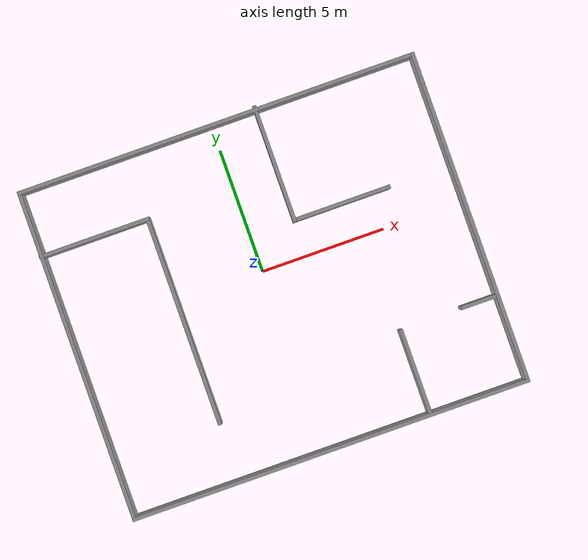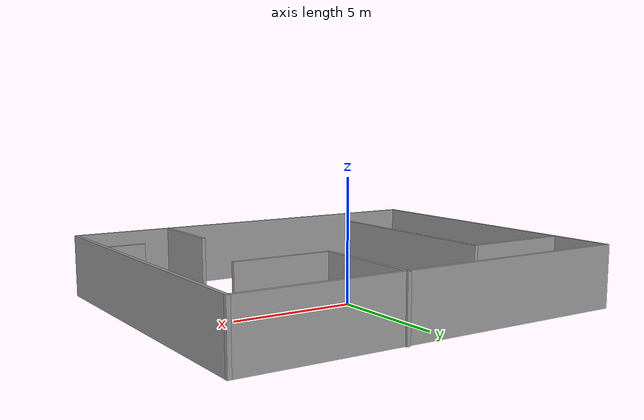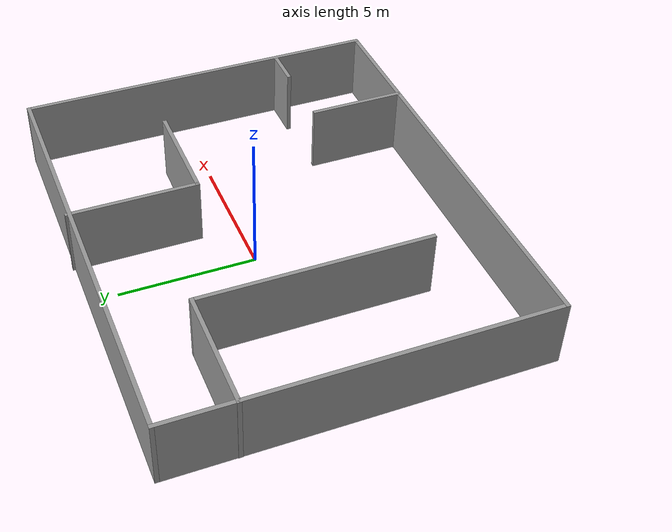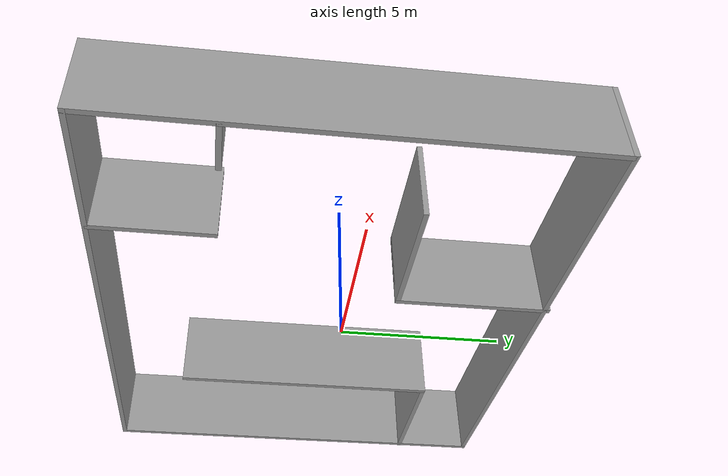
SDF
<?xml version='1.0'?>
<sdf version='1.7'>
  <model name='custom_map'>
    <pose>0.182569 -0.67134 0 0 -0 0</pose>
    <link name='Wall_31'>
      <collision name='Wall_31_Collision'>
        <geometry>
          <box>
            <size>16.25 0.15 2.5</size>
          </box>
        </geometry>
        <pose>0 0 1.25 0 -0 0</pose>
      </collision>
      <visual name='Wall_31_Visual'>
        <pose>0 0 1.25 0 -0 0</pose>
        <geometry>
          <box>
            <size>16.25 0.15 2.5</size>
          </box>
        </geometry>
        <material>
          <script>
            <uri>file://media/materials/scripts/gazebo.material</uri>
            <name>Gazebo/Grey</name>
          </script>
          <ambient>1 1 1 1</ambient>
        </material>
        <meta>
          <layer>0</layer>
        </meta>
      </visual>
      <pose>0.007645 -6.71784 0 0 -0 0</pose>
    </link>
    <link name='Wall_32'>
      <collision name='Wall_32_Collision'>
        <geometry>
          <box>
            <size>13.5 0.15 2.5</size>
          </box>
        </geometry>
        <pose>0 0 1.25 0 -0 0</pose>
      </collision>
      <visual name='Wall_32_Visual'>
        <pose>0 0 1.25 0 -0 0</pose>
        <geometry>
          <box>
            <size>13.5 0.15 2.5</size>
          </box>
        </geometry>
        <material>
          <script>
            <uri>file://media/materials/scripts/gazebo.material</uri>
            <name>Gazebo/Grey</name>
          </script>
          <ambient>1 1 1 1</ambient>
        </material>
        <meta>
          <layer>0</layer>
        </meta>
      </visual>
      <pose>8.05765 -0.042838 0 0 -0 1.5708</pose>
    </link>
    <link name='Wall_33'>
      <collision name='Wall_33_Collision'>
        <geometry>
          <box>
            <size>16.25 0.15 2.5</size>
          </box>
        </geometry>
        <pose>0 0 1.25 0 -0 0</pose>
      </collision>
      <visual name='Wall_33_Visual'>
        <pose>0 0 1.25 0 -0 0</pose>
        <geometry>
          <box>
            <size>16.25 0.15 2.5</size>
          </box>
        </geometry>
        <material>
          <script>
            <uri>file://media/materials/scripts/gazebo.material</uri>
            <name>Gazebo/Grey</name>
          </script>
          <ambient>1 1 1 1</ambient>
        </material>
        <meta>
          <layer>0</layer>
        </meta>
      </visual>
      <pose>0.007645 6.63216 0 0 -0 3.14159</pose>
    </link>
    <link name='Wall_34'>
      <collision name='Wall_34_Collision'>
        <geometry>
          <box>
            <size>13.5 0.15 2.5</size>
          </box>
        </geometry>
        <pose>0 0 1.25 0 -0 0</pose>
      </collision>
      <visual name='Wall_34_Visual'>
        <pose>0 0 1.25 0 -0 0</pose>
        <geometry>
          <box>
            <size>13.5 0.15 2.5</size>
          </box>
        </geometry>
        <material>
          <script>
            <uri>file://media/materials/scripts/gazebo.material</uri>
            <name>Gazebo/Grey</name>
          </script>
          <ambient>1 1 1 1</ambient>
        </material>
        <meta>
          <layer>0</layer>
        </meta>
      </visual>
      <pose>-8.04236 -0.042838 0 0 -0 -1.5708</pose>
    </link>
    <link name='Wall_36'>
      <collision name='Wall_36_Collision'>
        <geometry>
          <box>
            <size>4.5 0.15 2.5</size>
          </box>
        </geometry>
        <pose>0 0 1.25 0 -0 0</pose>
      </collision>
      <visual name='Wall_36_Visual'>
        <pose>0 0 1.25 0 -0 0</pose>
        <geometry>
          <box>
            <size>4.5 0.15 2.5</size>
          </box>
        </geometry>
        <material>
          <script>
            <uri>file://media/materials/scripts/gazebo.material</uri>
            <name>Gazebo/Grey</name>
          </script>
          <ambient>1 1 1 1</ambient>
        </material>
        <meta>
          <layer>0</layer>
        </meta>
      </visual>
      <pose>-5.88265 4.04271 0 0 -0 0</pose>
    </link>
    <link name='Wall_37'>
      <collision name='Wall_37_Collision'>
        <geometry>
          <box>
            <size>8.5 0.15 2.5</size>
          </box>
        </geometry>
        <pose>0 0 1.25 0 -0 0</pose>
      </collision>
      <visual name='Wall_37_Visual'>
        <pose>0 0 1.25 0 -0 0</pose>
        <geometry>
          <box>
            <size>8.5 0.15 2.5</size>
          </box>
        </geometry>
        <material>
          <script>
            <uri>file://media/materials/scripts/gazebo.material</uri>
            <name>Gazebo/Grey</name>
          </script>
          <ambient>1 1 1 1</ambient>
        </material>
        <meta>
          <layer>0</layer>
        </meta>
      </visual>
      <pose>-3.70765 -0.132286 0 0 -0 -1.5708</pose>
    </link>
    <link name='Wall_39'>
      <collision name='Wall_39_Collision'>
        <geometry>
          <box>
            <size>3.5 0.15 2.5</size>
          </box>
        </geometry>
        <pose>0 0 1.25 0 -0 0</pose>
      </collision>
      <visual name='Wall_39_Visual'>
        <pose>0 0 1.25 0 -0 0</pose>
        <geometry>
          <box>
            <size>3.5 0.15 2.5</size>
          </box>
        </geometry>
        <material>
          <script>
            <uri>file://media/materials/scripts/gazebo.material</uri>
            <name>Gazebo/Grey</name>
          </script>
          <ambient>1 1 1 1</ambient>
        </material>
        <meta>
          <layer>0</layer>
        </meta>
      </visual>
      <pose>4.08742 -4.98279 0 0 -0 1.5708</pose>
    </link>
    <link name='Wall_41'>
      <collision name='Wall_41_Collision'>
        <geometry>
          <box>
            <size>1.5 0.15 2.5</size>
          </box>
        </geometry>
        <pose>0 0 1.25 0 -0 0</pose>
      </collision>
      <visual name='Wall_41_Visual'>
        <pose>0 0 1.25 0 -0 0</pose>
        <geometry>
          <box>
            <size>1.5 0.15 2.5</size>
          </box>
        </geometry>
        <material>
          <script>
            <uri>file://media/materials/scripts/gazebo.material</uri>
            <name>Gazebo/Grey</name>
          </script>
          <ambient>1 1 1 1</ambient>
        </material>
        <meta>
          <layer>0</layer>
        </meta>
      </visual>
      <pose>7.3181 -3.23363 0 0 -0 3.14159</pose>
    </link>
    <link name='Wall_43'>
      <collision name='Wall_43_Collision'>
        <geometry>
          <box>
            <size>4.75 0.15 2.5</size>
          </box>
        </geometry>
        <pose>0 0 1.25 0 -0 0</pose>
      </collision>
      <visual name='Wall_43_Visual'>
        <pose>0 0 1.25 0 -0 0</pose>
        <geometry>
          <box>
            <size>4.75 0.15 2.5</size>
          </box>
        </geometry>
        <material>
          <script>
            <uri>file://media/materials/scripts/gazebo.material</uri>
            <name>Gazebo/Grey</name>
          </script>
          <ambient>1 1 1 1</ambient>
        </material>
        <meta>
          <layer>0</layer>
        </meta>
      </visual>
      <pose>1.62631 4.41784 0 0 -0 -1.5708</pose>
    </link>
    <link name='Wall_44'>
      <collision name='Wall_44_Collision'>
        <geometry>
          <box>
            <size>4 0.15 2.5</size>
          </box>
        </geometry>
        <pose>0 0 1.25 0 -0 0</pose>
      </collision>
      <visual name='Wall_44_Visual'>
        <pose>0 0 1.25 0 -0 0</pose>
        <geometry>
          <box>
            <size>4 0.15 2.5</size>
          </box>
        </geometry>
        <material>
          <script>
            <uri>file://media/materials/scripts/gazebo.material</uri>
            <name>Gazebo/Grey</name>
          </script>
          <ambient>1 1 1 1</ambient>
        </material>
        <meta>
          <layer>0</layer>
        </meta>
      </visual>
      <pose>3.55131 2.11784 0 0 -0 0</pose>
    </link>
    <static>1</static>
  </model>
</sdf>
